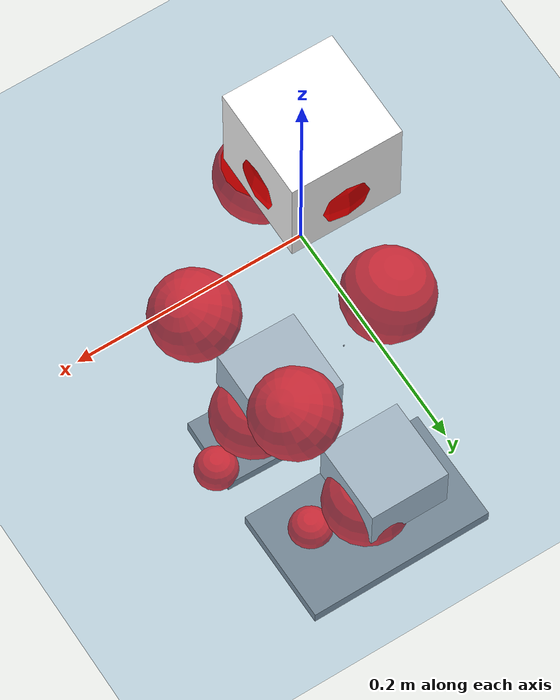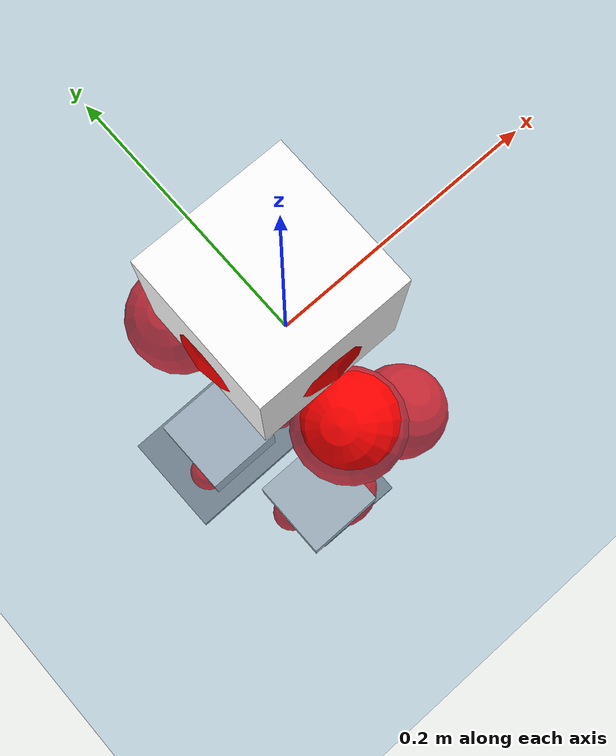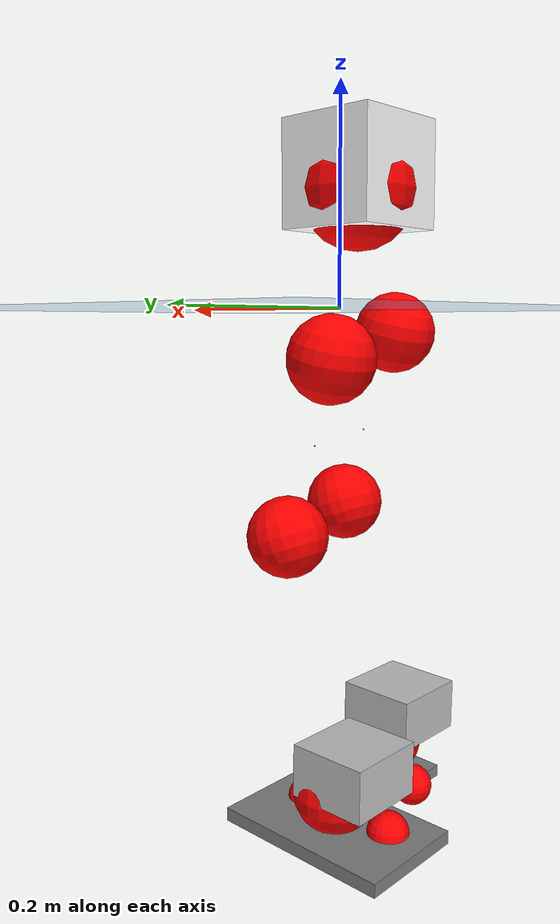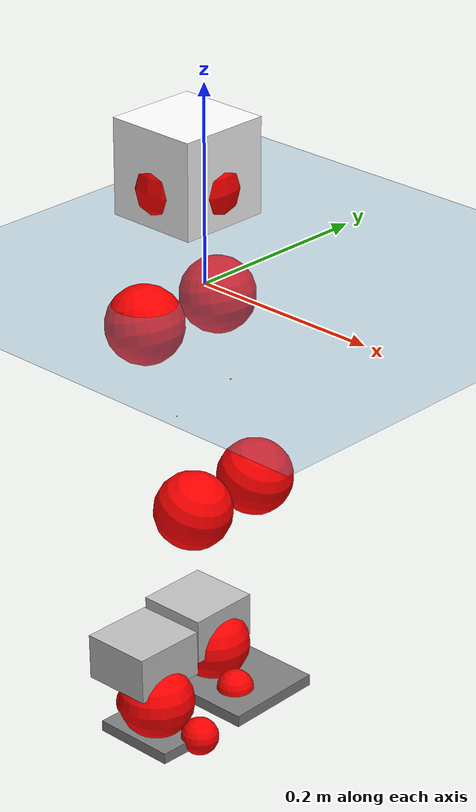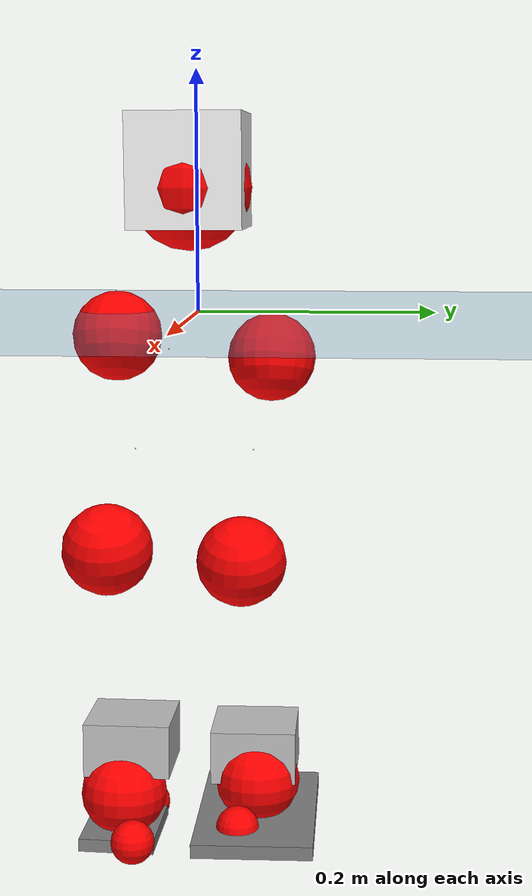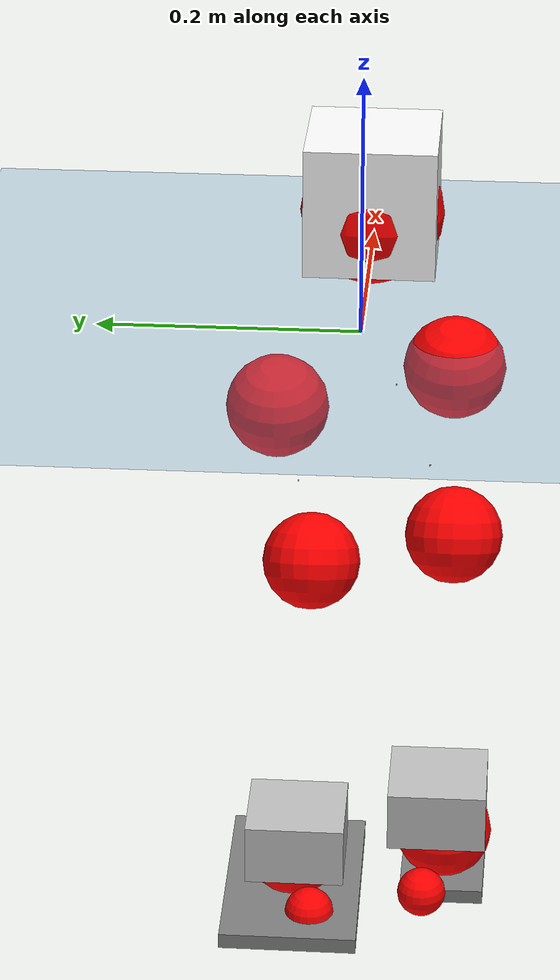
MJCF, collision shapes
<mujoco model="pi_12dof_release_v1">
  <compiler angle="radian" assetdir="assets" balanceinertia="true" inertiafromgeom="false"/>

  <option timestep="0.005" density="1.2" viscosity="2e-05"/>

  <size nkey="1"/>

  <visual>
    <quality shadowsize="8192"/>
    <map shadowclip="0.5"/>
  </visual>

  <default>
    <default class="/">
      <joint armature="0.01" damping="0.01" frictionloss="0.01"/>
      <geom contype="0" conaffinity="0" group="1" solref="-1000 -80"/>
      <site size="0.01 0.005 0.005" group="5"/>
      <general forcelimited="true" biastype="affine" gainprm="20" biasprm="0 -20 -0.5"/>
      <default class="foot">
        <geom size="0.0845 0.036 0.005" type="box" condim="6" group="4" priority="1" friction="0.9 0.2 0.2" solimp="0.015 1 0.005"/>
      </default>
      <default class="reward_collision_sphere">
        <geom group="5" rgba="1 0 0 1"/>
      </default>
    </default>
  </default>

  <asset>
    <texture type="skybox" colorspace="auto" name="//unnamed_texture_0" builtin="gradient" rgb1="0.95 0.95 0.95" rgb2="0.95 0.95 0.95" width="100" height="600"/>
    <texture type="2d" colorspace="auto" name="texplane" builtin="checker" rgb1="0.345 0.575 0.748" rgb2="0.345 0.575 0.748" markrgb="1 1 1" width="512" height="512"/>
    <material name="MatPlane" class="/" texture="texplane" texuniform="true" texrepeat="2 2" specular="0.9"/>
    <mesh name="baselink_1" class="/" file="baselink_1.STL"/>
    <mesh name="r_hip_pitch_link" class="/" file="r_hip_pitch_link.STL"/>
    <mesh name="r_hip_roll_link" class="/" file="r_hip_roll_link.STL"/>
    <mesh name="r_thigh_link" class="/" file="r_thigh_link.STL"/>
    <mesh name="r_calf_link" class="/" file="r_calf_link.STL"/>
    <mesh name="r_ankle_pitch_link" class="/" file="r_ankle_pitch_link.STL"/>
    <mesh name="r_ankle_roll_link" class="/" file="r_ankle_roll_link.STL"/>
    <mesh name="l_hip_pitch_link" class="/" file="l_hip_pitch_link.STL"/>
    <mesh name="l_hip_roll_link" class="/" file="l_hip_roll_link.STL"/>
    <mesh name="l_thigh_link" class="/" file="l_thigh_link.STL"/>
    <mesh name="l_calf_link" class="/" file="l_calf_link.STL"/>
    <mesh name="l_ankle_pitch_link" class="/" file="l_ankle_pitch_link.STL"/>
    <mesh name="l_ankle_roll_link" class="/" file="l_ankle_roll_link.STL"/>
  </asset>

  <worldbody>
    <geom name="floor" class="/" size="100 100 0.125" type="plane" group="0" material="MatPlane"/>
    <light name="toplight_shadow" class="/" pos="0 0 5" dir="0.0990148 0.0990148 -0.990148" type="directional" ambient="0.04 0.04 0.04" diffuse="0.55 0.55 0.55" specular="0.12 0.12 0.12"/>
    <light name="toplight_fill" class="/" pos="0 0 5" dir="0.0990148 0.0990148 -0.990148" type="directional" castshadow="false" ambient="0.04 0.04 0.04" diffuse="0.3 0.3 0.3" specular="0.08 0.08 0.08"/>
    <body name="trunk" pos="-0.0145575 -0.0078071 0.00284276" quat="0.999996 0.00114146 0.00145264 -0.00218181">
      <inertial pos="2.44187e-05 0.00276691 0.0585123" quat="0.696784 0.0155965 -0.0383159 0.716087" mass="1.91152" diaginertia="0.00110557 0.00161725 0.0239379"/>
      <joint name="//unnamed_joint_0" type="free"/>
      <geom name="//unnamed_geom_1" class="/" type="mesh" density="0" rgba="1 1 1 1" mesh="baselink_1"/>
      <geom name="//unnamed_geom_2" class="/" size="0.0481214 0.0481214 0.0481214" pos="0 0 0.114486" type="box" rgba="1 1 1 1"/>
      <geom name="//unnamed_geom_3" class="reward_collision_sphere" size="0.0529335" pos="0 0 0.100175"/>
      <site name="imu" class="/" pos="-0.0309433 0.0202653 0.0803523" size="0.00962428"/>
      <camera name="track" class="/" pos="0 -1.51518 0" quat="0.707107 0.707107 0 0" mode="trackcom"/>
      <camera name="ego_camera" class="/" pos="0.0523963 0 0.257594" quat="-0.5 -0.5 0.5 0.5"/>
      <body name="r_hip_pitch_link" pos="-0.00288559 -0.0201589 -0.0370424" quat="0.991373 0.001981 -0.131051 0.0011639">
        <inertial pos="0.0161211 -0.0338623 0.000677526" quat="-0.0174816 0.707022 -0.0301392 0.706333" mass="0.360702" diaginertia="1.97242e-05 2.88434e-05 0.000535387"/>
        <joint name="r_hip_pitch_joint" class="/" pos="0 0 0" axis="-0.0570351 -0.997794 0.03396" stiffness="0.0164904" range="-2.05773 1.02493" armature="0.00927734" damping="0" frictionloss="0.00992948"/>
        <geom name="//unnamed_geom_4" class="/" type="mesh" density="0" rgba="0.75294 0.75294 0.75294 1" mesh="r_hip_pitch_link"/>
        <geom name="//unnamed_geom_5" class="/" size="0.000481214 0.000481214 0.000481214" type="box" rgba="0.75294 0.75294 0.75294 1"/>
        <body name="r_hip_roll_link" pos="0.0111346 -0.0430677 0.00970283" quat="0.999991 -0.000158863 -0.00395287 0.00133519">
          <inertial pos="0.00148814 -0.00151392 -0.0704468" quat="0.727631 -0.103387 -0.0942337 0.671554" mass="0.366207" diaginertia="5.92556e-05 7.50486e-05 0.000858259"/>
          <joint name="r_hip_roll_joint" class="/" pos="0 0 0" axis="-0.997712 -0.0577091 0.0352308" stiffness="0.00674491" range="-0.193364 0.210355" armature="0.00515597" damping="0.0474077" frictionloss="0.0154025"/>
          <geom name="//unnamed_geom_6" class="/" type="mesh" density="0" rgba="0.75294 0.75294 0.75294 1" mesh="r_hip_roll_link"/>
          <geom name="//unnamed_geom_7" class="/" size="0.000481214 0.000481214 0.000481214" type="box" rgba="0.75294 0.75294 0.75294 1"/>
          <geom name="//unnamed_geom_8" class="reward_collision_sphere" size="0.0384971"/>
          <body name="r_thigh_link" pos="-0.00219881 0.0169856 -0.0968308" quat="0.999982 -0.00570121 -0.00161313 0.00037411">
            <inertial pos="-0.00893818 0.00644729 -0.067791" quat="0.710884 0.699985 -0.0394628 0.0557531" mass="0.0758321" diaginertia="2.08899e-05 2.03938e-05 0.000353783"/>
            <joint name="r_thigh_joint" class="/" pos="0 0 0" axis="0.0133132 -0.0490578 -0.998707" stiffness="0.0806063" range="-0.539457 0.275666" armature="0.00911639" damping="0" frictionloss="0.0138443"/>
            <geom name="//unnamed_geom_9" class="/" type="mesh" density="0" rgba="0.75294 0.75294 0.75294 1" mesh="r_thigh_link"/>
            <geom name="//unnamed_geom_10" class="/" size="0.000481214 0.000481214 0.000481214" type="box" rgba="0.75294 0.75294 0.75294 1"/>
            <body name="r_calf_link" pos="0.0167071 -0.0182847 -0.087223" quat="0.947853 0.000480905 0.318707 -0.000886296">
              <inertial pos="-0.0165083 -0.0070408 -0.0846756" quat="0.998377 0.00884864 0.0136776 0.0545698" mass="0.55184" diaginertia="0.000485353 0.000798829 0.000843321"/>
              <joint name="r_calf_joint" class="/" pos="0 0 0" axis="-0.0160627 -0.997048 0.0750779" stiffness="0.0452868" range="-1.59148 0.655251" armature="0.00557726" damping="0.0273019" frictionloss="0.0117869"/>
              <geom name="//unnamed_geom_11" class="/" type="mesh" density="0" rgba="0.75294 0.75294 0.75294 1" mesh="r_calf_link"/>
              <geom name="//unnamed_geom_12" class="/" size="0.000481214 0.000481214 0.000481214" type="box" rgba="0.75294 0.75294 0.75294 1"/>
              <geom name="//unnamed_geom_13" class="reward_collision_sphere" size="0.0384971"/>
              <body name="r_ankle_pitch_link" pos="0.000616695 0.00673796 -0.210655" quat="0.980027 0.000337409 -0.198864 0.000188043">
                <inertial pos="0.0126546 -0.0148539 -0.00614231" quat="0.00223346 0.706872 -0.00303438 0.707332" mass="0.142398" diaginertia="5.00485e-05 4.76956e-05 0.000650526"/>
                <joint name="r_ankle_pitch_joint" class="/" pos="0 0 0" axis="0.0486406 -0.998439 0.0274556" range="-1.46525 0.497585" armature="0.0155502" damping="0" frictionloss="0.0153507"/>
                <geom name="//unnamed_geom_14" class="/" type="mesh" density="0" rgba="0.75294 0.75294 0.75294 1" mesh="r_ankle_pitch_link"/>
                <geom name="//unnamed_geom_15" class="/" size="0.0375347 0.0384971 0.0240607" type="box" rgba="0.75294 0.75294 0.75294 1"/>
                <body name="r_ankle_roll_link" pos="0.0564707 -0.0043822 -0.0137843" quat="0.999966 -0.00543412 -6.72174e-05 -0.00615548">
                  <inertial pos="-0.0342628 0.0112485 -0.0342879" quat="0.554034 0.448121 0.441026 0.545647" mass="0.570421" diaginertia="0.000175261 0.00022385 0.00142318"/>
                  <joint name="r_ankle_roll_joint" class="/" pos="0 0 0" axis="-0.996593 -0.0220945 -0.0794648" stiffness="0.0528189" range="-0.171295 0.237507" armature="0.00679477" damping="0" frictionloss="0.0117205"/>
                  <geom name="//unnamed_geom_16" class="/" type="mesh" density="0" rgba="0.75294 0.75294 0.75294 1" mesh="r_ankle_roll_link"/>
                  <geom name="//unnamed_geom_17" class="/" type="mesh" rgba="0.75294 0.75294 0.75294 1" mesh="r_ankle_roll_link"/>
                  <geom name="right_foot" class="foot" size="0.0451529 0.0330065 0.00573383" pos="-0.0356295 0 -0.0629674"/>
                  <geom name="//unnamed_geom_19" class="reward_collision_sphere" size="0.0384971" pos="-0.0349309 0 -0.0286215"/>
                  <geom name="//unnamed_geom_20" class="reward_collision_sphere" size="0.0192486" pos="0.0104793 0.0151518 -0.0572431"/>
                  <geom name="//unnamed_geom_21" class="reward_collision_sphere" size="0.0192486" pos="-0.0838341 0.0151518 -0.0572431"/>
                  <site name="right_foot" class="foot" pos="-0.0356295 0 -0.0629674" size="0.00962428"/>
                </body>
              </body>
            </body>
          </body>
        </body>
      </body>
      <body name="l_hip_pitch_link" pos="-0.0179082 0.0319387 -0.0423617" quat="0.991822 8.00894e-05 -0.127619 0.00123336">
        <inertial pos="-0.0151011 0.058507 -0.000607179" quat="0.00199466 0.741583 0.0538226 0.668695" mass="0.389163" diaginertia="2.3136e-05 2.64596e-05 0.000714396"/>
        <joint name="l_hip_pitch_joint" class="/" pos="0 0 0" axis="0.082855 0.9962 0.0268469" stiffness="0.0735274" range="-0.943824 1.67251" armature="0.0168074" damping="0" frictionloss="0.00525947"/>
        <geom name="//unnamed_geom_22" class="/" type="mesh" density="0" rgba="0.75294 0.75294 0.75294 1" mesh="l_hip_pitch_link"/>
        <geom name="//unnamed_geom_23" class="/" size="0.000481214 0.000481214 0.000481214" type="box" rgba="0.75294 0.75294 0.75294 1"/>
        <body name="l_hip_roll_link" pos="-0.00979784 0.0353376 -0.00165824" quat="0.999993 -0.00333381 0.00173678 -0.000285733">
          <inertial pos="-0.00671525 -0.0158391 -0.0894804" quat="0.668916 -0.121793 -0.101386 0.72625" mass="0.274963" diaginertia="5.38567e-05 5.69626e-05 0.000794533"/>
          <joint name="l_hip_roll_joint" class="/" pos="0 0 0" axis="-0.998854 -0.0414004 0.0240071" stiffness="0.053339" range="-0.423722 -0.0650085" armature="0.00249194" damping="0.0529852" frictionloss="0.0145012"/>
          <geom name="//unnamed_geom_24" class="/" type="mesh" density="0" rgba="0.75294 0.75294 0.75294 1" mesh="l_hip_roll_link"/>
          <geom name="//unnamed_geom_25" class="/" size="0.000481214 0.000481214 0.000481214" type="box" rgba="0.75294 0.75294 0.75294 1"/>
          <geom name="//unnamed_geom_26" class="reward_collision_sphere" size="0.0384971"/>
          <body name="l_thigh_link" pos="0.0107563 -0.0132984 -0.0823897" quat="0.999964 0.00567863 -0.00420031 0.0046473">
            <inertial pos="-0.00336072 0.000588566 -0.0857924" quat="0.677115 0.734268 -0.0389458 0.0291183" mass="0.118188" diaginertia="2.10456e-05 2.59355e-05 0.000336998"/>
            <joint name="l_thigh_joint" class="/" pos="0 0 0" axis="0.0267747 -0.0234634 -0.999366" range="-0.288048 0.354255" armature="0.00856144" damping="0.0619376" frictionloss="0.00802504"/>
            <geom name="//unnamed_geom_27" class="/" type="mesh" density="0" rgba="0.75294 0.75294 0.75294 1" mesh="l_thigh_link"/>
            <geom name="//unnamed_geom_28" class="/" size="0.000481214 0.000481214 0.000481214" type="box" rgba="0.75294 0.75294 0.75294 1"/>
            <body name="l_calf_link" pos="0.0157664 -0.008217 -0.0968988" quat="0.94804 -0.00297768 0.318132 -0.00170291">
              <inertial pos="-0.0118999 -0.00668137 -0.100903" quat="0.996707 0.0736096 -0.0295655 -0.0168168" mass="0.774525" diaginertia="0.000542162 0.000796736 0.000961028"/>
              <joint name="l_calf_joint" class="/" pos="0 0 0" axis="-0.0659689 0.997434 0.0277992" range="-0.883051 1.49556" armature="0.0100032" damping="0" frictionloss="0.0161723"/>
              <geom name="//unnamed_geom_29" class="/" type="mesh" density="0" rgba="0.75294 0.75294 0.75294 1" mesh="l_calf_link"/>
              <geom name="//unnamed_geom_30" class="/" size="0.000481214 0.000481214 0.000481214" type="box" rgba="0.75294 0.75294 0.75294 1"/>
              <geom name="//unnamed_geom_31" class="reward_collision_sphere" size="0.0384971"/>
              <body name="l_ankle_pitch_link" pos="-0.00359962 0.00591606 -0.214873" quat="0.980297 0.00334707 -0.197494 0.0013788">
                <inertial pos="-0.00264119 0.00195406 -0.00659106" quat="-0.0644059 0.728943 0.048982 0.679775" mass="0.165768" diaginertia="5.18538e-05 4.53697e-05 0.000556571"/>
                <joint name="l_ankle_pitch_joint" class="/" pos="0 0 0" axis="0.0348987 0.999354 -0.00857845" range="-0.732763 1.08326" armature="0.0129693" damping="0.0638125" frictionloss="0.00723721"/>
                <geom name="//unnamed_geom_32" class="/" type="mesh" density="0" rgba="0.75294 0.75294 0.75294 1" mesh="l_ankle_pitch_link"/>
                <geom name="//unnamed_geom_33" class="/" size="0.0375347 0.0384971 0.0240607" type="box" rgba="0.75294 0.75294 0.75294 1"/>
                <body name="l_ankle_roll_link" pos="0.0533706 0.00299502 0.0030946" quat="1 0.000545244 -0.000109475 6.16206e-05">
                  <inertial pos="-0.0022668 0.0166212 -0.036325" quat="0.566093 0.426503 0.440808 0.550746" mass="0.399111" diaginertia="0.000223959 0.000221108 0.0017702"/>
                  <joint name="l_ankle_roll_joint" class="/" pos="0 0 0" axis="-0.999456 0.0177568 0.0277915" range="-0.264707 0.368519" armature="0.00745789" damping="0" frictionloss="0.00272744"/>
                  <geom name="//unnamed_geom_34" class="/" type="mesh" density="0" rgba="0.75294 0.75294 0.75294 1" mesh="l_ankle_roll_link"/>
                  <geom name="//unnamed_geom_35" class="/" type="mesh" rgba="0.75294 0.75294 0.75294 1" mesh="l_ankle_roll_link"/>
                  <geom name="left_foot" class="foot" size="0.0864839 0.0535532 0.00616166" pos="-0.0356295 0 -0.0629674"/>
                  <geom name="//unnamed_geom_37" class="reward_collision_sphere" size="0.0384971" pos="-0.0349309 0 -0.0286215"/>
                  <geom name="//unnamed_geom_38" class="reward_collision_sphere" size="0.0192486" pos="0.0104793 -0.0151518 -0.0572431"/>
                  <geom name="//unnamed_geom_39" class="reward_collision_sphere" size="0.0192486" pos="-0.0838341 -0.0151518 -0.0572431"/>
                  <site name="left_foot" class="foot" pos="-0.0356295 0 -0.0629674" size="0.00962428"/>
                </body>
              </body>
            </body>
          </body>
        </body>
      </body>
    </body>
  </worldbody>

  <contact>
    <pair class="/" geom1="floor" geom2="right_foot" name="//unnamed_contact_1"/>
    <pair class="/" geom1="floor" geom2="left_foot" name="//unnamed_contact_0"/>
  </contact>

  <actuator>
    <general name="r_hip_pitch_joint" class="/" joint="r_hip_pitch_joint" forcerange="-13.7635 13.7635" gainprm="17.6135" biasprm="0 -17.6135 -0.516499"/>
    <general name="r_hip_roll_joint" class="/" joint="r_hip_roll_joint" forcerange="-8.87216 8.87216" gainprm="17.6135" biasprm="0 -17.6135 -0.516499"/>
    <general name="r_thigh_joint" class="/" joint="r_thigh_joint" forcerange="-26.1324 26.1324" gainprm="17.6135" biasprm="0 -17.6135 -0.516499"/>
    <general name="r_calf_joint" class="/" joint="r_calf_joint" forcerange="-7.84686 7.84686" gainprm="17.6135" biasprm="0 -17.6135 -0.516499"/>
    <general name="r_ankle_pitch_joint" class="/" joint="r_ankle_pitch_joint" forcerange="-24.75 24.75" gainprm="17.6135" biasprm="0 -17.6135 -0.516499"/>
    <general name="r_ankle_roll_joint" class="/" joint="r_ankle_roll_joint" forcerange="-15.1577 15.1577" gainprm="17.6135" biasprm="0 -17.6135 -0.516499"/>
    <general name="l_hip_pitch_joint" class="/" joint="l_hip_pitch_joint" forcerange="-21.1504 21.1504" gainprm="17.6135" biasprm="0 -17.6135 -0.516499"/>
    <general name="l_hip_roll_joint" class="/" joint="l_hip_roll_joint" forcerange="-30.5669 30.5669" gainprm="17.6135" biasprm="0 -17.6135 -0.516499"/>
    <general name="l_thigh_joint" class="/" joint="l_thigh_joint" forcerange="-13.9449 13.9449" gainprm="17.6135" biasprm="0 -17.6135 -0.516499"/>
    <general name="l_calf_joint" class="/" joint="l_calf_joint" forcerange="-20.6392 20.6392" gainprm="17.6135" biasprm="0 -17.6135 -0.516499"/>
    <general name="l_ankle_pitch_joint" class="/" joint="l_ankle_pitch_joint" forcerange="-17.3248 17.3248" gainprm="17.6135" biasprm="0 -17.6135 -0.516499"/>
    <general name="l_ankle_roll_joint" class="/" joint="l_ankle_roll_joint" forcerange="-12.3377 12.3377" gainprm="17.6135" biasprm="0 -17.6135 -0.516499"/>
  </actuator>

  <sensor>
    <gyro site="imu" name="imu_angular_velocity"/>
    <velocimeter site="imu" name="imu_linear_velocity"/>
    <framelinvel objtype="site" objname="left_foot" name="left_foot_global_linear_velocity"/>
    <framelinvel objtype="site" objname="right_foot" name="right_foot_global_linear_velocity"/>
  </sensor>

  <keyframe>
    <key name="home" qpos="0 0 0.291 1 0 0 0 0.4 0 0 -0.8 0.4 0 -0.4 0 0 0.8 -0.4 0"/>
  </keyframe>
</mujoco>
